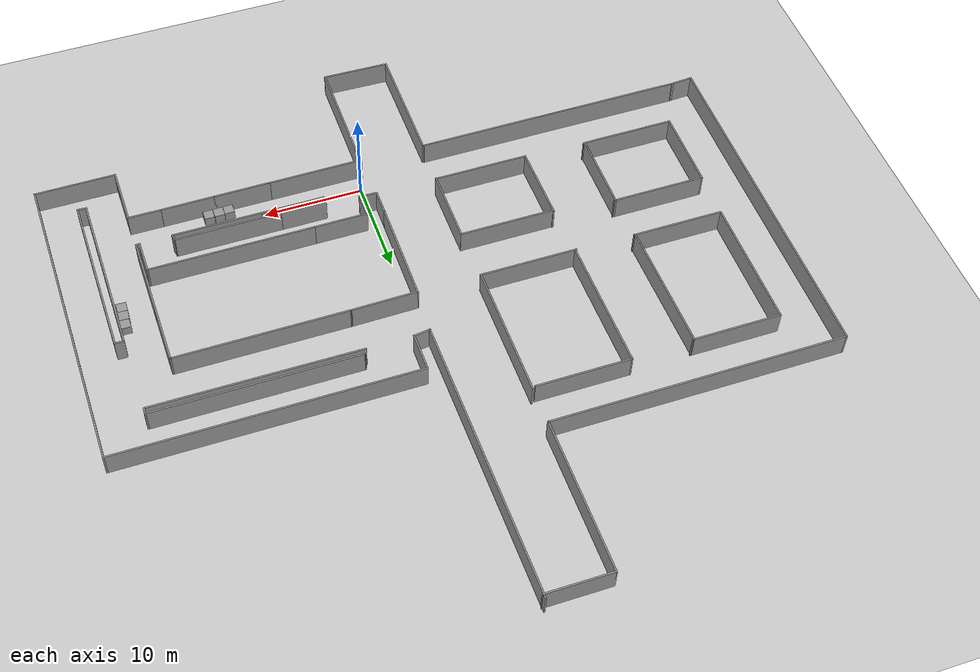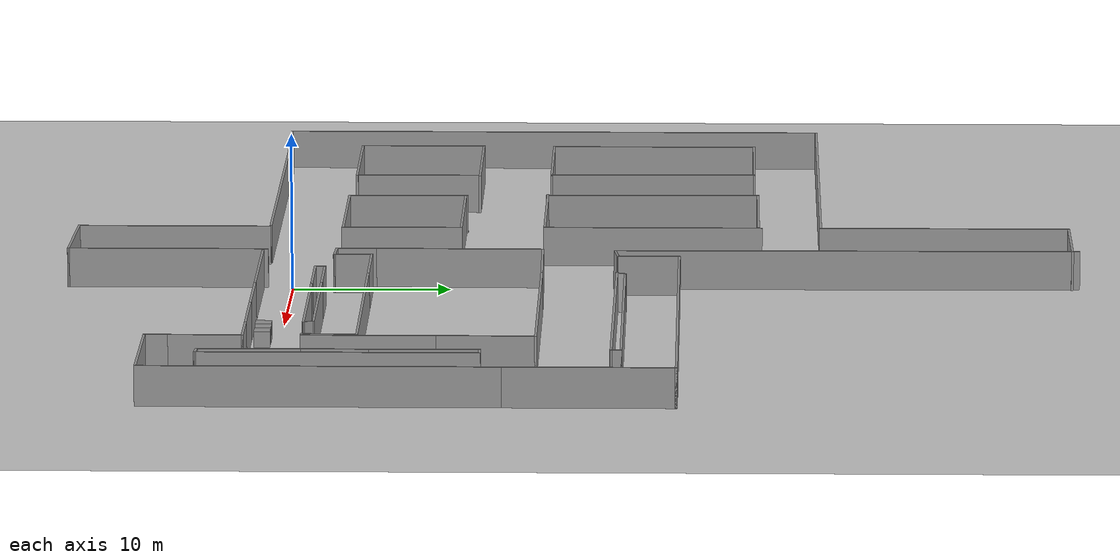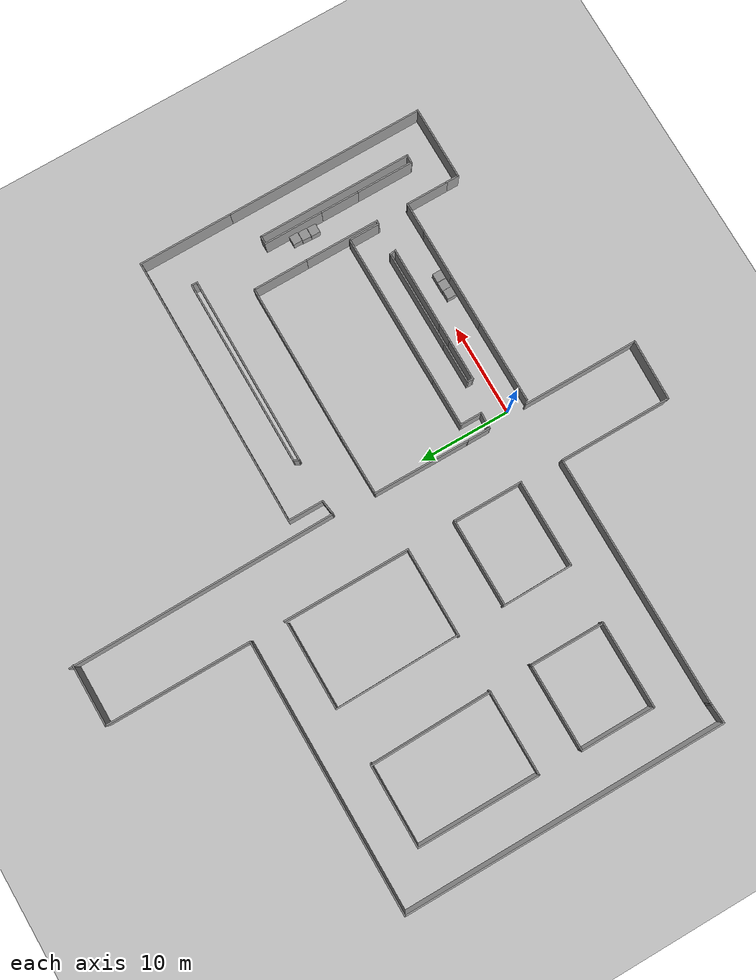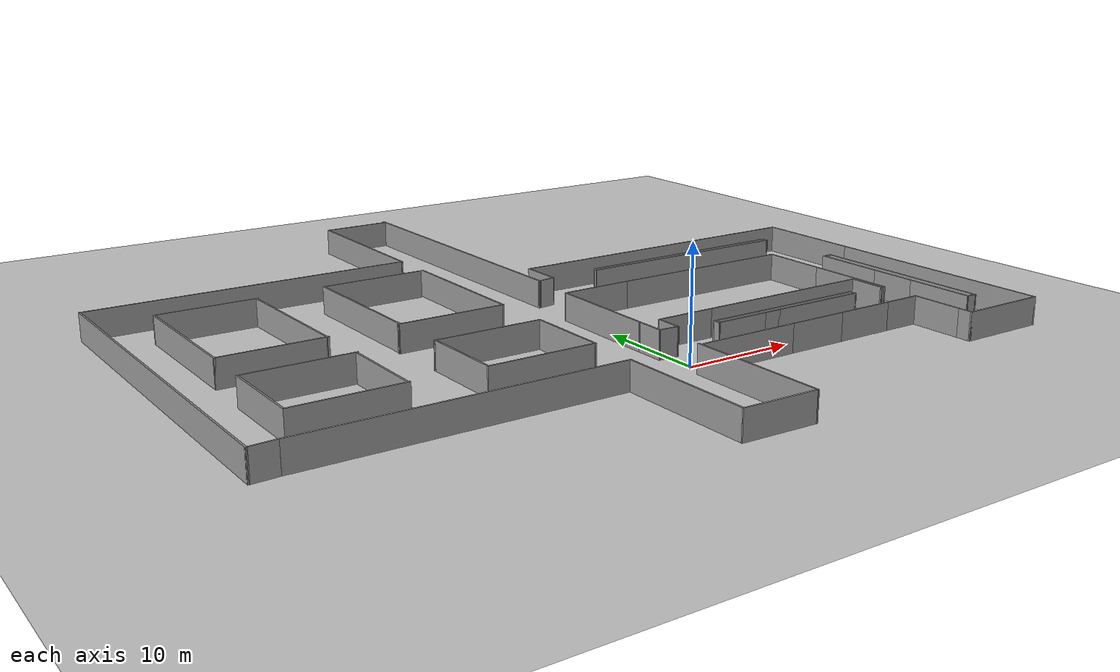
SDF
<sdf version="1.7">
 <world name="default">
  <plugin name="ActorPosesPlugin" filename="libActorPosesPlugin.so"/>
  <plugin name="collision_map_creator" filename="libcollision_map_creator.so"/>
  <light name="sun" type="directional">
   <pose>0 0 10 0 -0 0</pose>
   <diffuse>0.8 0.8 0.8 1</diffuse>
   <specular>0.2 0.2 0.2 1</specular>
   <attenuation>
    <range>1000</range>
    <constant>0.9</constant>
    <linear>0.01</linear>
    <quadratic>0.001</quadratic>
   </attenuation>
   <direction>-0.5 0.1 -0.9</direction>
   <spot><inner_angle>0</inner_angle><outer_angle>0</outer_angle><falloff>0</falloff></spot>
  </light>
  <model name="ground_plane">
   <static>1</static>
   <link name="link">
    <collision name="collision">
     <geometry><plane><normal>0 0 1</normal><size>100 100</size></plane></geometry>
     <surface><friction><ode><mu>100</mu><mu2>50</mu2></ode></friction></surface>
    </collision>
    <visual name="visual">
     <cast_shadows>0</cast_shadows>
     <geometry><plane><normal>0 0 1</normal><size>100 100</size></plane></geometry>
     <material>
      <script><uri>file://media/materials/scripts/gazebo.material</uri><name>Gazebo/Grey</name></script>
     </material>
    </visual>
   </link>
  </model>
  <gravity>0 0 -9.8</gravity>
  <magnetic_field>6e-06 2.3e-05 -4.2e-05</magnetic_field>
  <atmosphere type="adiabatic"/>
  <physics type="ode">
   <max_step_size>0.001</max_step_size>
   <real_time_factor>1</real_time_factor>
   <real_time_update_rate>1000</real_time_update_rate>
  </physics>
  <scene><ambient>0.4 0.4 0.4 1</ambient><background>0.7 0.7 0.7 1</background><shadows>1</shadows></scene>
  <spherical_coordinates>
   <surface_model>EARTH_WGS84</surface_model>
   <latitude_deg>0</latitude_deg>
   <longitude_deg>0</longitude_deg>
   <elevation>0</elevation>
   <heading_deg>0</heading_deg>
  </spherical_coordinates>
  <model name="complex_campus_scenario">
   <pose>-2.73791 17.7406 0 0 -0 0</pose>
   <link name="Wall_10">
    <collision name="Wall_10_Collision">
     <geometry><box><size>2 0.15 2.5</size></box></geometry>
     <pose>0 0 1.25 0 -0 0</pose>
    </collision>
    <visual name="Wall_10_Visual">
     <pose>0 0 1.25 0 -0 0</pose>
     <geometry><box><size>2 0.15 2.5</size></box></geometry>
     <material>
      <script><uri>file://media/materials/scripts/gazebo.material</uri><name>Gazebo/Grey</name></script>
      <ambient>1 1 1 1</ambient>
     </material>
     <meta><layer>0</layer></meta>
    </visual>
    <pose>12.5634 -16.0902 0 0 -0 0</pose>
   </link>
   <link name="Wall_100">
    <collision name="Wall_100_Collision">
     <geometry><box><size>0.25 0.15 2.5</size></box></geometry>
     <pose>0 0 1.25 0 -0 0</pose>
    </collision>
    <visual name="Wall_100_Visual">
     <pose>0 0 1.25 0 -0 0</pose>
     <geometry><box><size>0.25 0.15 2.5</size></box></geometry>
     <material>
      <script><uri>file://media/materials/scripts/gazebo.material</uri><name>Gazebo/Grey</name></script>
      <ambient>1 1 1 1</ambient>
     </material>
     <meta><layer>0</layer></meta>
    </visual>
    <pose>-14.1191 -1.89517 0 0 -0 1.0472</pose>
   </link>
   <link name="Wall_102">
    <collision name="Wall_102_Collision">
     <geometry><box><size>12.25 0.15 2.5</size></box></geometry>
     <pose>0 0 1.25 0 -0 0</pose>
    </collision>
    <visual name="Wall_102_Visual">
     <pose>0 0 1.25 0 -0 0</pose>
     <geometry><box><size>12.25 0.15 2.5</size></box></geometry>
     <material>
      <script><uri>file://media/materials/scripts/gazebo.material</uri><name>Gazebo/Grey</name></script>
      <ambient>1 1 1 1</ambient>
     </material>
     <meta><layer>0</layer></meta>
    </visual>
    <pose>-4.42292 -25.6115 0 0 -0 -1.5708</pose>
   </link>
   <link name="Wall_103">
    <collision name="Wall_103_Collision">
     <geometry><box><size>6.75259 0.15 2.5</size></box></geometry>
     <pose>0 0 1.25 0 -0 0</pose>
    </collision>
    <visual name="Wall_103_Visual">
     <pose>0 0 1.25 0 -0 0</pose>
     <geometry><box><size>6.75259 0.15 2.5</size></box></geometry>
     <material>
      <script><uri>file://media/materials/scripts/gazebo.material</uri><name>Gazebo/Grey</name></script>
      <ambient>1 1 1 1</ambient>
     </material>
     <meta><layer>0</layer></meta>
    </visual>
    <pose>-1.12292 -31.8798 0 0 -0 -0.028008</pose>
   </link>
   <link name="Wall_104">
    <collision name="Wall_104_Collision">
     <geometry><box><size>12.75 0.15 2.5</size></box></geometry>
     <pose>0 0 1.25 0 -0 0</pose>
    </collision>
    <visual name="Wall_104_Visual">
     <pose>0 0 1.25 0 -0 0</pose>
     <geometry><box><size>12.75 0.15 2.5</size></box></geometry>
     <material>
      <script><uri>file://media/materials/scripts/gazebo.material</uri><name>Gazebo/Grey</name></script>
      <ambient>1 1 1 1</ambient>
     </material>
     <meta><layer>0</layer></meta>
    </visual>
    <pose>2.17708 -25.6723 0 0 -0 1.5708</pose>
   </link>
   <link name="Wall_106">
    <collision name="Wall_106_Collision">
     <geometry><box><size>10.6698 0.15 2.5</size></box></geometry>
     <pose>0 0 1.25 0 -0 0</pose>
    </collision>
    <visual name="Wall_106_Visual">
     <pose>0 0 1.25 0 -0 0</pose>
     <geometry><box><size>10.6698 0.15 2.5</size></box></geometry>
     <material>
      <script><uri>file://media/materials/scripts/gazebo.material</uri><name>Gazebo/Grey</name></script>
      <ambient>1 1 1 1</ambient>
     </material>
     <meta><layer>0</layer></meta>
    </visual>
    <pose>1.95982 -7.18572 0 0 -0 1.56333</pose>
   </link>
   <link name="Wall_109">
    <collision name="Wall_109_Collision">
     <geometry><box><size>5.5 0.15 2.5</size></box></geometry>
     <pose>0 0 1.25 0 -0 0</pose>
    </collision>
    <visual name="Wall_109_Visual">
     <pose>0 0 1.25 0 -0 0</pose>
     <geometry><box><size>5.5 0.15 2.5</size></box></geometry>
     <material>
      <script><uri>file://media/materials/scripts/gazebo.material</uri><name>Gazebo/Grey</name></script>
      <ambient>1 1 1 1</ambient>
     </material>
     <meta><layer>0</layer></meta>
    </visual>
    <pose>6.3241 -12.6937 0 0 -0 3.14159</pose>
   </link>
   <link name="Wall_110">
    <collision name="Wall_110_Collision">
     <geometry><box><size>2.5 0.15 2.5</size></box></geometry>
     <pose>0 0 1.25 0 -0 0</pose>
    </collision>
    <visual name="Wall_110_Visual">
     <pose>0 0 1.25 0 -0 0</pose>
     <geometry><box><size>2.5 0.15 2.5</size></box></geometry>
     <material>
      <script><uri>file://media/materials/scripts/gazebo.material</uri><name>Gazebo/Grey</name></script>
      <ambient>1 1 1 1</ambient>
     </material>
     <meta><layer>0</layer></meta>
    </visual>
    <pose>3.6491 -13.8687 0 0 -0 -1.5708</pose>
   </link>
   <link name="Wall_112">
    <collision name="Wall_112_Collision">
     <geometry><box><size>4.75 0.15 2.5</size></box></geometry>
     <pose>0 0 1.25 0 -0 0</pose>
    </collision>
    <visual name="Wall_112_Visual">
     <pose>0 0 1.25 0 -0 0</pose>
     <geometry><box><size>4.75 0.15 2.5</size></box></geometry>
     <material>
      <script><uri>file://media/materials/scripts/gazebo.material</uri><name>Gazebo/Grey</name></script>
      <ambient>1 1 1 1</ambient>
     </material>
     <meta><layer>0</layer></meta>
    </visual>
    <pose>9.33838 -15.4902 0 0 -0 3.14159</pose>
   </link>
   <link name="Wall_115">
    <collision name="Wall_115_Collision">
     <geometry><box><size>0.75 0.15 2.5</size></box></geometry>
     <pose>0 0 1.25 0 -0 0</pose>
    </collision>
    <visual name="Wall_115_Visual">
     <pose>0 0 1.25 0 -0 0</pose>
     <geometry><box><size>0.75 0.15 2.5</size></box></geometry>
     <material>
      <script><uri>file://media/materials/scripts/gazebo.material</uri><name>Gazebo/Grey</name></script>
      <ambient>1 1 1 1</ambient>
     </material>
     <meta><layer>0</layer></meta>
    </visual>
    <pose>7.03838 -15.7902 0 0 -0 -1.5708</pose>
   </link>
   <link name="Wall_116">
    <collision name="Wall_116_Collision">
     <geometry><box><size>5 0.15 2.5</size></box></geometry>
     <pose>0 0 1.25 0 -0 0</pose>
    </collision>
    <visual name="Wall_116_Visual">
     <pose>0 0 1.25 0 -0 0</pose>
     <geometry><box><size>5 0.15 2.5</size></box></geometry>
     <material>
      <script><uri>file://media/materials/scripts/gazebo.material</uri><name>Gazebo/Grey</name></script>
      <ambient>1 1 1 1</ambient>
     </material>
     <meta><layer>0</layer></meta>
    </visual>
    <pose>9.46338 -16.0902 0 0 -0 0</pose>
   </link>
   <link name="Wall_118">
    <collision name="Wall_118_Collision">
     <geometry><box><size>2.6677 0.15 2.5</size></box></geometry>
     <pose>0 0 1.25 0 -0 0</pose>
    </collision>
    <visual name="Wall_118_Visual">
     <pose>0 0 1.25 0 -0 0</pose>
     <geometry><box><size>2.6677 0.15 2.5</size></box></geometry>
     <material>
      <script><uri>file://media/materials/scripts/gazebo.material</uri><name>Gazebo/Grey</name></script>
      <ambient>1 1 1 1</ambient>
     </material>
     <meta><layer>0</layer></meta>
    </visual>
    <pose>1.92054 -13.7043 0 0 -0 -1.5708</pose>
   </link>
   <link name="Wall_119">
    <collision name="Wall_119_Collision">
     <geometry><box><size>1.88043 0.15 2.5</size></box></geometry>
     <pose>0 0 1.25 0 -0 0</pose>
    </collision>
    <visual name="Wall_119_Visual">
     <pose>0 0 1.25 0 -0 0</pose>
     <geometry><box><size>1.88043 0.15 2.5</size></box></geometry>
     <material>
      <script><uri>file://media/materials/scripts/gazebo.material</uri><name>Gazebo/Grey</name></script>
      <ambient>1 1 1 1</ambient>
     </material>
     <meta><layer>0</layer></meta>
    </visual>
    <pose>2.78482 -15.0034 0 0 -0 -0.046525</pose>
   </link>
   <link name="Wall_12">
    <collision name="Wall_12_Collision">
     <geometry><box><size>9 0.15 2.5</size></box></geometry>
     <pose>0 0 1.25 0 -0 0</pose>
    </collision>
    <visual name="Wall_12_Visual">
     <pose>0 0 1.25 0 -0 0</pose>
     <geometry><box><size>9 0.15 2.5</size></box></geometry>
     <material>
      <script><uri>file://media/materials/scripts/gazebo.material</uri><name>Gazebo/Grey</name></script>
      <ambient>1 1 1 1</ambient>
     </material>
     <meta><layer>0</layer></meta>
    </visual>
    <pose>17.9134 -16.0902 0 0 -0 0</pose>
   </link>
   <link name="Wall_121">
    <collision name="Wall_121_Collision">
     <geometry><box><size>7.75 0.15 2.5</size></box></geometry>
     <pose>0 0 1.25 0 -0 0</pose>
    </collision>
    <visual name="Wall_121_Visual">
     <pose>0 0 1.25 0 -0 0</pose>
     <geometry><box><size>7.75 0.15 2.5</size></box></geometry>
     <material>
      <script><uri>file://media/materials/scripts/gazebo.material</uri><name>Gazebo/Grey</name></script>
      <ambient>1 1 1 1</ambient>
     </material>
     <meta><layer>0</layer></meta>
    </visual>
    <pose>-4.25185 -11.0949 0 0 -0 1.5708</pose>
   </link>
   <link name="Wall_123">
    <collision name="Wall_123_Collision">
     <geometry><box><size>14 0.15 2.5</size></box></geometry>
     <pose>0 0 1.25 0 -0 0</pose>
    </collision>
    <visual name="Wall_123_Visual">
     <pose>0 0 1.25 0 -0 0</pose>
     <geometry><box><size>14 0.15 2.5</size></box></geometry>
     <material>
      <script><uri>file://media/materials/scripts/gazebo.material</uri><name>Gazebo/Grey</name></script>
      <ambient>1 1 1 1</ambient>
     </material>
     <meta><layer>0</layer></meta>
    </visual>
    <pose>-4.37772 4.98997 0 0 -0 -1.5708</pose>
   </link>
   <link name="Wall_125">
    <collision name="Wall_125_Collision">
     <geometry><box><size>16 0.15 2.5</size></box></geometry>
     <pose>0 0 1.25 0 -0 0</pose>
    </collision>
    <visual name="Wall_125_Visual">
     <pose>0 0 1.25 0 -0 0</pose>
     <geometry><box><size>16 0.15 2.5</size></box></geometry>
     <material>
      <script><uri>file://media/materials/scripts/gazebo.material</uri><name>Gazebo/Grey</name></script>
      <ambient>1 1 1 1</ambient>
     </material>
     <meta><layer>0</layer></meta>
    </visual>
    <pose>-4.42292 23.6527 0 0 -0 1.5708</pose>
   </link>
   <link name="Wall_126">
    <collision name="Wall_126_Collision">
     <geometry><box><size>6.75 0.15 2.5</size></box></geometry>
     <pose>0 0 1.25 0 -0 0</pose>
    </collision>
    <visual name="Wall_126_Visual">
     <pose>0 0 1.25 0 -0 0</pose>
     <geometry><box><size>6.75 0.15 2.5</size></box></geometry>
     <material>
      <script><uri>file://media/materials/scripts/gazebo.material</uri><name>Gazebo/Grey</name></script>
      <ambient>1 1 1 1</ambient>
     </material>
     <meta><layer>0</layer></meta>
    </visual>
    <pose>-1.12292 31.5777 0 0 -0 0</pose>
   </link>
   <link name="Wall_128">
    <collision name="Wall_128_Collision">
     <geometry><box><size>29.4707 0.15 2.5</size></box></geometry>
     <pose>0 0 1.25 0 -0 0</pose>
    </collision>
    <visual name="Wall_128_Visual">
     <pose>0 0 1.25 0 -0 0</pose>
     <geometry><box><size>29.4707 0.15 2.5</size></box></geometry>
     <material>
      <script><uri>file://media/materials/scripts/gazebo.material</uri><name>Gazebo/Grey</name></script>
      <ambient>1 1 1 1</ambient>
     </material>
     <meta><layer>0</layer></meta>
    </visual>
    <pose>2.21266 17.3139 0 0 -0 -1.56299</pose>
   </link>
   <link name="Wall_14">
    <collision name="Wall_14_Collision">
     <geometry><box><size>3.5 0.15 2.5</size></box></geometry>
     <pose>0 0 1.25 0 -0 0</pose>
    </collision>
    <visual name="Wall_14_Visual">
     <pose>0 0 1.25 0 -0 0</pose>
     <geometry><box><size>3.5 0.15 2.5</size></box></geometry>
     <material>
      <script><uri>file://media/materials/scripts/gazebo.material</uri><name>Gazebo/Grey</name></script>
      <ambient>1 1 1 1</ambient>
     </material>
     <meta><layer>0</layer></meta>
    </visual>
    <pose>24.2521 -19.6223 0 0 -0 0</pose>
   </link>
   <link name="Wall_16">
    <collision name="Wall_16_Collision">
     <geometry><box><size>4.75 0.15 2.5</size></box></geometry>
     <pose>0 0 1.25 0 -0 0</pose>
    </collision>
    <visual name="Wall_16_Visual">
     <pose>0 0 1.25 0 -0 0</pose>
     <geometry><box><size>4.75 0.15 2.5</size></box></geometry>
     <material>
      <script><uri>file://media/materials/scripts/gazebo.material</uri><name>Gazebo/Grey</name></script>
      <ambient>1 1 1 1</ambient>
     </material>
     <meta><layer>0</layer></meta>
    </visual>
    <pose>25.9271 -21.9223 0 0 -0 -1.5708</pose>
   </link>
   <link name="Wall_17">
    <collision name="Wall_17_Collision">
     <geometry><box><size>1.5 0.15 2.5</size></box></geometry>
     <pose>0 0 1.25 0 -0 0</pose>
    </collision>
    <visual name="Wall_17_Visual">
     <pose>0 0 1.25 0 -0 0</pose>
     <geometry><box><size>1.5 0.15 2.5</size></box></geometry>
     <material>
      <script><uri>file://media/materials/scripts/gazebo.material</uri><name>Gazebo/Grey</name></script>
      <ambient>1 1 1 1</ambient>
     </material>
     <meta><layer>0</layer></meta>
    </visual>
    <pose>25.9271 -24.8973 0 0 -0 -1.5708</pose>
   </link>
   <link name="Wall_19">
    <collision name="Wall_19_Collision">
     <geometry><box><size>8.25 0.15 2.5</size></box></geometry>
     <pose>0 0 1.25 0 -0 0</pose>
    </collision>
    <visual name="Wall_19_Visual">
     <pose>0 0 1.25 0 -0 0</pose>
     <geometry><box><size>8.25 0.15 2.5</size></box></geometry>
     <material>
      <script><uri>file://media/materials/scripts/gazebo.material</uri><name>Gazebo/Grey</name></script>
      <ambient>1 1 1 1</ambient>
     </material>
     <meta><layer>0</layer></meta>
    </visual>
    <pose>25.9491 -11.9937 0 0 -0 1.5708</pose>
   </link>
   <link name="Wall_21">
    <collision name="Wall_21_Collision">
     <geometry><box><size>4.25 0.15 2.5</size></box></geometry>
     <pose>0 0 1.25 0 -0 0</pose>
    </collision>
    <visual name="Wall_21_Visual">
     <pose>0 0 1.25 0 -0 0</pose>
     <geometry><box><size>4.25 0.15 2.5</size></box></geometry>
     <material>
      <script><uri>file://media/materials/scripts/gazebo.material</uri><name>Gazebo/Grey</name></script>
      <ambient>1 1 1 1</ambient>
     </material>
     <meta><layer>0</layer></meta>
    </visual>
    <pose>29.5577 -13.7814 0 0 -0 1.5708</pose>
   </link>
   <link name="Wall_23">
    <collision name="Wall_23_Collision">
     <geometry><box><size>6.25 0.15 2.5</size></box></geometry>
     <pose>0 0 1.25 0 -0 0</pose>
    </collision>
    <visual name="Wall_23_Visual">
     <pose>0 0 1.25 0 -0 0</pose>
     <geometry><box><size>6.25 0.15 2.5</size></box></geometry>
     <material>
      <script><uri>file://media/materials/scripts/gazebo.material</uri><name>Gazebo/Grey</name></script>
      <ambient>1 1 1 1</ambient>
     </material>
     <meta><layer>0</layer></meta>
    </visual>
    <pose>25.9491 -4.89366 0 0 -0 1.5708</pose>
   </link>
   <link name="Wall_25">
    <collision name="Wall_25_Collision">
     <geometry><box><size>6.75 0.15 2.5</size></box></geometry>
     <pose>0 0 1.25 0 -0 0</pose>
    </collision>
    <visual name="Wall_25_Visual">
     <pose>0 0 1.25 0 -0 0</pose>
     <geometry><box><size>6.75 0.15 2.5</size></box></geometry>
     <material>
      <script><uri>file://media/materials/scripts/gazebo.material</uri><name>Gazebo/Grey</name></script>
      <ambient>1 1 1 1</ambient>
     </material>
     <meta><layer>0</layer></meta>
    </visual>
    <pose>29.5577 -8.43139 0 0 -0 1.5708</pose>
   </link>
   <link name="Wall_27">
    <collision name="Wall_27_Collision">
     <geometry><box><size>1 0.15 2.5</size></box></geometry>
     <pose>0 0 1.25 0 -0 0</pose>
    </collision>
    <visual name="Wall_27_Visual">
     <pose>0 0 1.25 0 -0 0</pose>
     <geometry><box><size>1 0.15 2.5</size></box></geometry>
     <material>
      <script><uri>file://media/materials/scripts/gazebo.material</uri><name>Gazebo/Grey</name></script>
      <ambient>1 1 1 1</ambient>
     </material>
     <meta><layer>0</layer></meta>
    </visual>
    <pose>29.9827 -5.13139 0 0 -0 0</pose>
   </link>
   <link name="Wall_28">
    <collision name="Wall_28_Collision">
     <geometry><box><size>17.25 0.15 2.5</size></box></geometry>
     <pose>0 0 1.25 0 -0 0</pose>
    </collision>
    <visual name="Wall_28_Visual">
     <pose>0 0 1.25 0 -0 0</pose>
     <geometry><box><size>17.25 0.15 2.5</size></box></geometry>
     <material>
      <script><uri>file://media/materials/scripts/gazebo.material</uri><name>Gazebo/Grey</name></script>
      <ambient>1 1 1 1</ambient>
     </material>
     <meta><layer>0</layer></meta>
    </visual>
    <pose>30.4077 -13.6814 0 0 -0 -1.5708</pose>
   </link>
   <link name="Wall_30">
    <collision name="Wall_30_Collision">
     <geometry><box><size>6.5 0.15 2.5</size></box></geometry>
     <pose>0 0 1.25 0 -0 0</pose>
    </collision>
    <visual name="Wall_30_Visual">
     <pose>0 0 1.25 0 -0 0</pose>
     <geometry><box><size>6.5 0.15 2.5</size></box></geometry>
     <material>
      <script><uri>file://media/materials/scripts/gazebo.material</uri><name>Gazebo/Grey</name></script>
      <ambient>1 1 1 1</ambient>
     </material>
     <meta><layer>0</layer></meta>
    </visual>
    <pose>29.5577 -19.0064 0 0 -0 -1.5708</pose>
   </link>
   <link name="Wall_31">
    <collision name="Wall_31_Collision">
     <geometry><box><size>1.00147 0.15 2.5</size></box></geometry>
     <pose>0 0 1.25 0 -0 0</pose>
    </collision>
    <visual name="Wall_31_Visual">
     <pose>0 0 1.25 0 -0 0</pose>
     <geometry><box><size>1.00147 0.15 2.5</size></box></geometry>
     <material>
      <script><uri>file://media/materials/scripts/gazebo.material</uri><name>Gazebo/Grey</name></script>
      <ambient>1 1 1 1</ambient>
     </material>
     <meta><layer>0</layer></meta>
    </visual>
    <pose>29.9827 -22.2064 0 0 -0 -0.058756</pose>
   </link>
   <link name="Wall_33">
    <collision name="Wall_33_Collision">
     <geometry><box><size>8.25 0.15 2.5</size></box></geometry>
     <pose>0 0 1.25 0 -0 0</pose>
    </collision>
    <visual name="Wall_33_Visual">
     <pose>0 0 1.25 0 -0 0</pose>
     <geometry><box><size>8.25 0.15 2.5</size></box></geometry>
     <material>
      <script><uri>file://media/materials/scripts/gazebo.material</uri><name>Gazebo/Grey</name></script>
      <ambient>1 1 1 1</ambient>
     </material>
     <meta><layer>0</layer></meta>
    </visual>
    <pose>29.9771 -25.5723 0 0 -0 0</pose>
   </link>
   <link name="Wall_34">
    <collision name="Wall_34_Collision">
     <geometry><box><size>22.0964 0.15 2.5</size></box></geometry>
     <pose>0 0 1.25 0 -0 0</pose>
    </collision>
    <visual name="Wall_34_Visual">
     <pose>0 0 1.25 0 -0 0</pose>
     <geometry><box><size>22.0964 0.15 2.5</size></box></geometry>
     <material>
      <script><uri>file://media/materials/scripts/gazebo.material</uri><name>Gazebo/Grey</name></script>
      <ambient>1 1 1 1</ambient>
     </material>
     <meta><layer>0</layer></meta>
    </visual>
    <pose>34.0271 -14.5991 0 0 -0 1.5708</pose>
   </link>
   <link name="Wall_38">
    <collision name="Wall_38_Collision">
     <geometry><box><size>10.75 0.15 2.5</size></box></geometry>
     <pose>0 0 1.25 0 -0 0</pose>
    </collision>
    <visual name="Wall_38_Visual">
     <pose>0 0 1.25 0 -0 0</pose>
     <geometry><box><size>10.75 0.15 2.5</size></box></geometry>
     <material>
      <script><uri>file://media/materials/scripts/gazebo.material</uri><name>Gazebo/Grey</name></script>
      <ambient>1 1 1 1</ambient>
     </material>
     <meta><layer>0</layer></meta>
    </visual>
    <pose>16.9384 -15.4902 0 0 -0 0</pose>
   </link>
   <link name="Wall_39">
    <collision name="Wall_39_Collision">
     <geometry><box><size>0.758276 0.15 2.5</size></box></geometry>
     <pose>0 0 1.25 0 -0 0</pose>
    </collision>
    <visual name="Wall_39_Visual">
     <pose>0 0 1.25 0 -0 0</pose>
     <geometry><box><size>0.758276 0.15 2.5</size></box></geometry>
     <material>
      <script><uri>file://media/materials/scripts/gazebo.material</uri><name>Gazebo/Grey</name></script>
      <ambient>1 1 1 1</ambient>
     </material>
     <meta><layer>0</layer></meta>
    </visual>
    <pose>22.2884 -15.7902 0 0 -0 -1.40565</pose>
   </link>
   <link name="Wall_4">
    <collision name="Wall_4_Collision">
     <geometry><box><size>5.75 0.15 2.5</size></box></geometry>
     <pose>0 0 1.25 0 -0 0</pose>
    </collision>
    <visual name="Wall_4_Visual">
     <pose>0 0 1.25 0 -0 0</pose>
     <geometry><box><size>5.75 0.15 2.5</size></box></geometry>
     <material>
      <script><uri>file://media/materials/scripts/gazebo.material</uri><name>Gazebo/Grey</name></script>
      <ambient>1 1 1 1</ambient>
     </material>
     <meta><layer>0</layer></meta>
    </visual>
    <pose>14.4271 -19.6223 0 0 -0 0</pose>
   </link>
   <link name="Wall_41">
    <collision name="Wall_41_Collision">
     <geometry><box><size>0.5 0.15 2.5</size></box></geometry>
     <pose>0 0 1.25 0 -0 0</pose>
    </collision>
    <visual name="Wall_41_Visual">
     <pose>0 0 1.25 0 -0 0</pose>
     <geometry><box><size>0.5 0.15 2.5</size></box></geometry>
     <material>
      <script><uri>file://media/materials/scripts/gazebo.material</uri><name>Gazebo/Grey</name></script>
      <ambient>1 1 1 1</ambient>
     </material>
     <meta><layer>0</layer></meta>
    </visual>
    <pose>25.7741 -16.0437 0 0 -0 3.14159</pose>
   </link>
   <link name="Wall_42">
    <collision name="Wall_42_Collision">
     <geometry><box><size>3.5 0.15 2.5</size></box></geometry>
     <pose>0 0 1.25 0 -0 0</pose>
    </collision>
    <visual name="Wall_42_Visual">
     <pose>0 0 1.25 0 -0 0</pose>
     <geometry><box><size>3.5 0.15 2.5</size></box></geometry>
     <material>
      <script><uri>file://media/materials/scripts/gazebo.material</uri><name>Gazebo/Grey</name></script>
      <ambient>1 1 1 1</ambient>
     </material>
     <meta><layer>0</layer></meta>
    </visual>
    <pose>25.5991 -14.3687 0 0 -0 1.5708</pose>
   </link>
   <link name="Wall_43">
    <collision name="Wall_43_Collision">
     <geometry><box><size>16.75 0.15 2.5</size></box></geometry>
     <pose>0 0 1.25 0 -0 0</pose>
    </collision>
    <visual name="Wall_43_Visual">
     <pose>0 0 1.25 0 -0 0</pose>
     <geometry><box><size>16.75 0.15 2.5</size></box></geometry>
     <material>
      <script><uri>file://media/materials/scripts/gazebo.material</uri><name>Gazebo/Grey</name></script>
      <ambient>1 1 1 1</ambient>
     </material>
     <meta><layer>0</layer></meta>
    </visual>
    <pose>17.2991 -12.6937 0 0 -0 3.14159</pose>
   </link>
   <link name="Wall_46">
    <collision name="Wall_46_Collision">
     <geometry><box><size>17.5 0.15 2.5</size></box></geometry>
     <pose>0 0 1.25 0 -0 0</pose>
    </collision>
    <visual name="Wall_46_Visual">
     <pose>0 0 1.25 0 -0 0</pose>
     <geometry><box><size>17.5 0.15 2.5</size></box></geometry>
     <material>
      <script><uri>file://media/materials/scripts/gazebo.material</uri><name>Gazebo/Grey</name></script>
      <ambient>1 1 1 1</ambient>
     </material>
     <meta><layer>0</layer></meta>
    </visual>
    <pose>17.2741 -1.84366 0 0 -0 3.14159</pose>
   </link>
   <link name="Wall_48">
    <collision name="Wall_48_Collision">
     <geometry><box><size>21.0007 0.15 2.5</size></box></geometry>
     <pose>0 0 1.25 0 -0 0</pose>
    </collision>
    <visual name="Wall_48_Visual">
     <pose>0 0 1.25 0 -0 0</pose>
     <geometry><box><size>21.0007 0.15 2.5</size></box></geometry>
     <material>
      <script><uri>file://media/materials/scripts/gazebo.material</uri><name>Gazebo/Grey</name></script>
      <ambient>1 1 1 1</ambient>
     </material>
     <meta><layer>0</layer></meta>
    </visual>
    <pose>19.059 2.80759 0 0 -0 -0.00397</pose>
   </link>
   <link name="Wall_5">
    <collision name="Wall_5_Collision">
     <geometry><box><size>5.5 0.15 2.5</size></box></geometry>
     <pose>0 0 1.25 0 -0 0</pose>
    </collision>
    <visual name="Wall_5_Visual">
     <pose>0 0 1.25 0 -0 0</pose>
     <geometry><box><size>5.5 0.15 2.5</size></box></geometry>
     <material>
      <script><uri>file://media/materials/scripts/gazebo.material</uri><name>Gazebo/Grey</name></script>
      <ambient>1 1 1 1</ambient>
     </material>
     <meta><layer>0</layer></meta>
    </visual>
    <pose>19.9021 -19.6223 0 0 -0 0</pose>
   </link>
   <link name="Wall_50">
    <collision name="Wall_50_Collision">
     <geometry><box><size>10.5 0.15 2.5</size></box></geometry>
     <pose>0 0 1.25 0 -0 0</pose>
    </collision>
    <visual name="Wall_50_Visual">
     <pose>0 0 1.25 0 -0 0</pose>
     <geometry><box><size>10.5 0.15 2.5</size></box></geometry>
     <material>
      <script><uri>file://media/materials/scripts/gazebo.material</uri><name>Gazebo/Grey</name></script>
      <ambient>1 1 1 1</ambient>
     </material>
     <meta><layer>0</layer></meta>
    </visual>
    <pose>34.0271 1.54912 0 0 -0 1.5708</pose>
   </link>
   <link name="Wall_54">
    <collision name="Wall_54_Collision">
     <geometry><box><size>0.75 0.15 2.5</size></box></geometry>
     <pose>0 0 1.25 0 -0 0</pose>
    </collision>
    <visual name="Wall_54_Visual">
     <pose>0 0 1.25 0 -0 0</pose>
     <geometry><box><size>0.75 0.15 2.5</size></box></geometry>
     <material>
      <script><uri>file://media/materials/scripts/gazebo.material</uri><name>Gazebo/Grey</name></script>
      <ambient>1 1 1 1</ambient>
     </material>
     <meta><layer>0</layer></meta>
    </visual>
    <pose>29.484 3.06621 0 0 -0 1.5708</pose>
   </link>
   <link name="Wall_55">
    <collision name="Wall_55_Collision">
     <geometry><box><size>20.75 0.15 2.5</size></box></geometry>
     <pose>0 0 1.25 0 -0 0</pose>
    </collision>
    <visual name="Wall_55_Visual">
     <pose>0 0 1.25 0 -0 0</pose>
     <geometry><box><size>20.75 0.15 2.5</size></box></geometry>
     <material>
      <script><uri>file://media/materials/scripts/gazebo.material</uri><name>Gazebo/Grey</name></script>
      <ambient>1 1 1 1</ambient>
     </material>
     <meta><layer>0</layer></meta>
    </visual>
    <pose>19.184 3.36621 0 0 -0 3.14159</pose>
   </link>
   <link name="Wall_56">
    <collision name="Wall_56_Collision">
     <geometry><box><size>0.724484 0.15 2.5</size></box></geometry>
     <pose>0 0 1.25 0 -0 0</pose>
    </collision>
    <visual name="Wall_56_Visual">
     <pose>0 0 1.25 0 -0 0</pose>
     <geometry><box><size>0.724484 0.15 2.5</size></box></geometry>
     <material>
      <script><uri>file://media/materials/scripts/gazebo.material</uri><name>Gazebo/Grey</name></script>
      <ambient>1 1 1 1</ambient>
     </material>
     <meta><layer>0</layer></meta>
    </visual>
    <pose>8.75905 3.10759 0 0 -0 -2.02103</pose>
   </link>
   <link name="Wall_59">
    <collision name="Wall_59_Collision">
     <geometry><box><size>30.25 0.15 2.5</size></box></geometry>
     <pose>0 0 1.25 0 -0 0</pose>
    </collision>
    <visual name="Wall_59_Visual">
     <pose>0 0 1.25 0 -0 0</pose>
     <geometry><box><size>30.25 0.15 2.5</size></box></geometry>
     <material>
      <script><uri>file://media/materials/scripts/gazebo.material</uri><name>Gazebo/Grey</name></script>
      <ambient>1 1 1 1</ambient>
     </material>
     <meta><layer>0</layer></meta>
    </visual>
    <pose>18.9771 6.72412 0 0 -0 3.14159</pose>
   </link>
   <link name="Wall_60">
    <collision name="Wall_60_Collision">
     <geometry><box><size>4 0.15 2.5</size></box></geometry>
     <pose>0 0 1.25 0 -0 0</pose>
    </collision>
    <visual name="Wall_60_Visual">
     <pose>0 0 1.25 0 -0 0</pose>
     <geometry><box><size>4 0.15 2.5</size></box></geometry>
     <material>
      <script><uri>file://media/materials/scripts/gazebo.material</uri><name>Gazebo/Grey</name></script>
      <ambient>1 1 1 1</ambient>
     </material>
     <meta><layer>0</layer></meta>
    </visual>
    <pose>3.92708 4.79912 0 0 -0 -1.5708</pose>
   </link>
   <link name="Wall_62">
    <collision name="Wall_62_Collision">
     <geometry><box><size>6.75115 0.15 2.5</size></box></geometry>
     <pose>0 0 1.25 0 -0 0</pose>
    </collision>
    <visual name="Wall_62_Visual">
     <pose>0 0 1.25 0 -0 0</pose>
     <geometry><box><size>6.75115 0.15 2.5</size></box></geometry>
     <material>
      <script><uri>file://media/materials/scripts/gazebo.material</uri><name>Gazebo/Grey</name></script>
      <ambient>1 1 1 1</ambient>
     </material>
     <meta><layer>0</layer></meta>
    </visual>
    <pose>5.2991 -1.88481 0 0 -0 -3.12912</pose>
   </link>
   <link name="Wall_64">
    <collision name="Wall_64_Collision">
     <geometry><box><size>1.76507 0.15 2.5</size></box></geometry>
     <pose>0 0 1.25 0 -0 0</pose>
    </collision>
    <visual name="Wall_64_Visual">
     <pose>0 0 1.25 0 -0 0</pose>
     <geometry><box><size>1.76507 0.15 2.5</size></box></geometry>
     <material>
      <script><uri>file://media/materials/scripts/gazebo.material</uri><name>Gazebo/Grey</name></script>
      <ambient>1 1 1 1</ambient>
     </material>
     <meta><layer>0</layer></meta>
    </visual>
    <pose>3.12708 2.76405 0 0 -0 -3.00485</pose>
   </link>
   <link name="Wall_67">
    <collision name="Wall_67_Collision">
     <geometry><box><size>9.25 0.15 2.5</size></box></geometry>
     <pose>0 0 1.25 0 -0 0</pose>
    </collision>
    <visual name="Wall_67_Visual">
     <pose>0 0 1.25 0 -0 0</pose>
     <geometry><box><size>9.25 0.15 2.5</size></box></geometry>
     <material>
      <script><uri>file://media/materials/scripts/gazebo.material</uri><name>Gazebo/Grey</name></script>
      <ambient>1 1 1 1</ambient>
     </material>
     <meta><layer>0</layer></meta>
    </visual>
    <pose>7.07708 -19.6223 0 0 -0 3.14159</pose>
   </link>
   <link name="Wall_70">
    <collision name="Wall_70_Collision">
     <geometry><box><size>27.5 0.15 2.5</size></box></geometry>
     <pose>0 0 1.25 0 -0 0</pose>
    </collision>
    <visual name="Wall_70_Visual">
     <pose>0 0 1.25 0 -0 0</pose>
     <geometry><box><size>27.5 0.15 2.5</size></box></geometry>
     <material>
      <script><uri>file://media/materials/scripts/gazebo.material</uri><name>Gazebo/Grey</name></script>
      <ambient>1 1 1 1</ambient>
     </material>
     <meta><layer>0</layer></meta>
    </visual>
    <pose>-18.2724 -19.4964 0 0 -0 3.14159</pose>
   </link>
   <link name="Wall_72">
    <collision name="Wall_72_Collision">
     <geometry><box><size>2.35498 0.15 2.5</size></box></geometry>
     <pose>0 0 1.25 0 -0 0</pose>
    </collision>
    <visual name="Wall_72_Visual">
     <pose>0 0 1.25 0 -0 0</pose>
     <geometry><box><size>2.35498 0.15 2.5</size></box></geometry>
     <material>
      <script><uri>file://media/materials/scripts/gazebo.material</uri><name>Gazebo/Grey</name></script>
      <ambient>1 1 1 1</ambient>
     </material>
     <meta><layer>0</layer></meta>
    </visual>
    <pose>-32.9222 -19.5594 0 0 -0 -3.08447</pose>
   </link>
   <link name="Wall_73">
    <collision name="Wall_73_Collision">
     <geometry><box><size>35.5 0.15 2.5</size></box></geometry>
     <pose>0 0 1.25 0 -0 0</pose>
    </collision>
    <visual name="Wall_73_Visual">
     <pose>0 0 1.25 0 -0 0</pose>
     <geometry><box><size>35.5 0.15 2.5</size></box></geometry>
     <material>
      <script><uri>file://media/materials/scripts/gazebo.material</uri><name>Gazebo/Grey</name></script>
      <ambient>1 1 1 1</ambient>
     </material>
     <meta><layer>0</layer></meta>
    </visual>
    <pose>-34.0229 -1.94729 0 0 -0 1.5708</pose>
   </link>
   <link name="Wall_74">
    <collision name="Wall_74_Collision">
     <geometry><box><size>29.75 0.15 2.5</size></box></geometry>
     <pose>0 0 1.25 0 -0 0</pose>
    </collision>
    <visual name="Wall_74_Visual">
     <pose>0 0 1.25 0 -0 0</pose>
     <geometry><box><size>29.75 0.15 2.5</size></box></geometry>
     <material>
      <script><uri>file://media/materials/scripts/gazebo.material</uri><name>Gazebo/Grey</name></script>
      <ambient>1 1 1 1</ambient>
     </material>
     <meta><layer>0</layer></meta>
    </visual>
    <pose>-19.2229 15.7277 0 0 -0 0</pose>
   </link>
   <link name="Wall_77">
    <collision name="Wall_77_Collision">
     <geometry><box><size>13.5 0.15 2.5</size></box></geometry>
     <pose>0 0 1.25 0 -0 0</pose>
    </collision>
    <visual name="Wall_77_Visual">
     <pose>0 0 1.25 0 -0 0</pose>
     <geometry><box><size>13.5 0.15 2.5</size></box></geometry>
     <material>
      <script><uri>file://media/materials/scripts/gazebo.material</uri><name>Gazebo/Grey</name></script>
      <ambient>1 1 1 1</ambient>
     </material>
     <meta><layer>0</layer></meta>
    </visual>
    <pose>-29.2895 4.85536 0 0 -0 -1.5708</pose>
   </link>
   <link name="Wall_79">
    <collision name="Wall_79_Collision">
     <geometry><box><size>8.25 0.15 2.5</size></box></geometry>
     <pose>0 0 1.25 0 -0 0</pose>
    </collision>
    <visual name="Wall_79_Visual">
     <pose>0 0 1.25 0 -0 0</pose>
     <geometry><box><size>8.25 0.15 2.5</size></box></geometry>
     <material>
      <script><uri>file://media/materials/scripts/gazebo.material</uri><name>Gazebo/Grey</name></script>
      <ambient>1 1 1 1</ambient>
     </material>
     <meta><layer>0</layer></meta>
    </visual>
    <pose>-29.399 -10.5799 0 0 -0 -1.5708</pose>
   </link>
   <link name="Wall_80">
    <collision name="Wall_80_Collision">
     <geometry><box><size>9.53431 0.15 2.5</size></box></geometry>
     <pose>0 0 1.25 0 -0 0</pose>
    </collision>
    <visual name="Wall_80_Visual">
     <pose>0 0 1.25 0 -0 0</pose>
     <geometry><box><size>9.53431 0.15 2.5</size></box></geometry>
     <material>
      <script><uri>file://media/materials/scripts/gazebo.material</uri><name>Gazebo/Grey</name></script>
      <ambient>1 1 1 1</ambient>
     </material>
     <meta><layer>0</layer></meta>
    </visual>
    <pose>-24.7068 -14.6299 0 0 -0 0</pose>
   </link>
   <link name="Wall_82">
    <collision name="Wall_82_Collision">
     <geometry><box><size>9.61805 0.15 2.5</size></box></geometry>
     <pose>0 0 1.25 0 -0 0</pose>
    </collision>
    <visual name="Wall_82_Visual">
     <pose>0 0 1.25 0 -0 0</pose>
     <geometry><box><size>9.61805 0.15 2.5</size></box></geometry>
     <material>
      <script><uri>file://media/materials/scripts/gazebo.material</uri><name>Gazebo/Grey</name></script>
      <ambient>1 1 1 1</ambient>
     </material>
     <meta><layer>0</layer></meta>
    </visual>
    <pose>-8.99367 -14.8486 0 0 -0 0</pose>
   </link>
   <link name="Wall_85">
    <collision name="Wall_85_Collision">
     <geometry><box><size>9.28431 0.15 2.5</size></box></geometry>
     <pose>0 0 1.25 0 -0 0</pose>
    </collision>
    <visual name="Wall_85_Visual">
     <pose>0 0 1.25 0 -0 0</pose>
     <geometry><box><size>9.28431 0.15 2.5</size></box></geometry>
     <material>
      <script><uri>file://media/materials/scripts/gazebo.material</uri><name>Gazebo/Grey</name></script>
      <ambient>1 1 1 1</ambient>
     </material>
     <meta><layer>0</layer></meta>
    </visual>
    <pose>-24.7224 -1.81964 0 0 -0 0</pose>
   </link>
   <link name="Wall_87">
    <collision name="Wall_87_Collision">
     <geometry><box><size>9.03431 0.15 2.5</size></box></geometry>
     <pose>0 0 1.25 0 -0 0</pose>
    </collision>
    <visual name="Wall_87_Visual">
     <pose>0 0 1.25 0 -0 0</pose>
     <geometry><box><size>9.03431 0.15 2.5</size></box></geometry>
     <material>
      <script><uri>file://media/materials/scripts/gazebo.material</uri><name>Gazebo/Grey</name></script>
      <ambient>1 1 1 1</ambient>
     </material>
     <meta><layer>0</layer></meta>
    </visual>
    <pose>-24.8474 11.5304 0 0 -0 0</pose>
   </link>
   <link name="Wall_88">
    <collision name="Wall_88_Collision">
     <geometry><box><size>13.5023 0.15 2.5</size></box></geometry>
     <pose>0 0 1.25 0 -0 0</pose>
    </collision>
    <visual name="Wall_88_Visual">
     <pose>0 0 1.25 0 -0 0</pose>
     <geometry><box><size>13.5023 0.15 2.5</size></box></geometry>
     <material>
      <script><uri>file://media/materials/scripts/gazebo.material</uri><name>Gazebo/Grey</name></script>
      <ambient>1 1 1 1</ambient>
     </material>
     <meta><layer>0</layer></meta>
    </visual>
    <pose>-20.3754 4.85536 0 0 -0 -1.55207</pose>
   </link>
   <link name="Wall_90">
    <collision name="Wall_90_Collision">
     <geometry><box><size>9.53431 0.15 2.5</size></box></geometry>
     <pose>0 0 1.25 0 -0 0</pose>
    </collision>
    <visual name="Wall_90_Visual">
     <pose>0 0 1.25 0 -0 0</pose>
     <geometry><box><size>9.53431 0.15 2.5</size></box></geometry>
     <material>
      <script><uri>file://media/materials/scripts/gazebo.material</uri><name>Gazebo/Grey</name></script>
      <ambient>1 1 1 1</ambient>
     </material>
     <meta><layer>0</layer></meta>
    </visual>
    <pose>-24.7068 -6.52994 0 0 -0 0</pose>
   </link>
   <link name="Wall_91">
    <collision name="Wall_91_Collision">
     <geometry><box><size>8.25 0.15 2.5</size></box></geometry>
     <pose>0 0 1.25 0 -0 0</pose>
    </collision>
    <visual name="Wall_91_Visual">
     <pose>0 0 1.25 0 -0 0</pose>
     <geometry><box><size>8.25 0.15 2.5</size></box></geometry>
     <material>
      <script><uri>file://media/materials/scripts/gazebo.material</uri><name>Gazebo/Grey</name></script>
      <ambient>1 1 1 1</ambient>
     </material>
     <meta><layer>0</layer></meta>
    </visual>
    <pose>-20.1099 -10.5799 0 0 -0 -1.5708</pose>
   </link>
   <link name="Wall_93">
    <collision name="Wall_93_Collision">
     <geometry><box><size>7.71506 0.15 2.5</size></box></geometry>
     <pose>0 0 1.25 0 -0 0</pose>
    </collision>
    <visual name="Wall_93_Visual">
     <pose>0 0 1.25 0 -0 0</pose>
     <geometry><box><size>7.71506 0.15 2.5</size></box></geometry>
     <material>
      <script><uri>file://media/materials/scripts/gazebo.material</uri><name>Gazebo/Grey</name></script>
      <ambient>1 1 1 1</ambient>
     </material>
     <meta><layer>0</layer></meta>
    </visual>
    <pose>-13.7753 -10.9712 0 0 -0 1.58338</pose>
   </link>
   <link name="Wall_94">
    <collision name="Wall_94_Collision">
     <geometry><box><size>9.71323 0.15 2.5</size></box></geometry>
     <pose>0 0 1.25 0 -0 0</pose>
    </collision>
    <visual name="Wall_94_Visual">
     <pose>0 0 1.25 0 -0 0</pose>
     <geometry><box><size>9.71323 0.15 2.5</size></box></geometry>
     <material>
      <script><uri>file://media/materials/scripts/gazebo.material</uri><name>Gazebo/Grey</name></script>
      <ambient>1 1 1 1</ambient>
     </material>
     <meta><layer>0</layer></meta>
    </visual>
    <pose>-9.04126 -7.28416 0 0 -0 0</pose>
   </link>
   <link name="Wall_96">
    <collision name="Wall_96_Collision">
     <geometry><box><size>13.7503 0.15 2.5</size></box></geometry>
     <pose>0 0 1.25 0 -0 0</pose>
    </collision>
    <visual name="Wall_96_Visual">
     <pose>0 0 1.25 0 -0 0</pose>
     <geometry><box><size>13.7503 0.15 2.5</size></box></geometry>
     <material>
      <script><uri>file://media/materials/scripts/gazebo.material</uri><name>Gazebo/Grey</name></script>
      <ambient>1 1 1 1</ambient>
     </material>
     <meta><layer>0</layer></meta>
    </visual>
    <pose>-14.0941 4.94813 0 0 -0 1.58479</pose>
   </link>
   <link name="Wall_97">
    <collision name="Wall_97_Collision">
     <geometry><box><size>9.5 0.15 2.5</size></box></geometry>
     <pose>0 0 1.25 0 -0 0</pose>
    </collision>
    <visual name="Wall_97_Visual">
     <pose>0 0 1.25 0 -0 0</pose>
     <geometry><box><size>9.5 0.15 2.5</size></box></geometry>
     <material>
      <script><uri>file://media/materials/scripts/gazebo.material</uri><name>Gazebo/Grey</name></script>
      <ambient>1 1 1 1</ambient>
     </material>
     <meta><layer>0</layer></meta>
    </visual>
    <pose>-9.41913 11.7481 0 0 -0 0</pose>
   </link>
   <link name="Wall_99">
    <collision name="Wall_99_Collision">
     <geometry><box><size>9.75 0.15 2.5</size></box></geometry>
     <pose>0 0 1.25 0 -0 0</pose>
    </collision>
    <visual name="Wall_99_Visual">
     <pose>0 0 1.25 0 -0 0</pose>
     <geometry><box><size>9.75 0.15 2.5</size></box></geometry>
     <material>
      <script><uri>file://media/materials/scripts/gazebo.material</uri><name>Gazebo/Grey</name></script>
      <ambient>1 1 1 1</ambient>
     </material>
     <meta><layer>0</layer></meta>
    </visual>
    <pose>-9.34413 -1.93847 0 0 -0 3.14159</pose>
   </link>
   <static>1</static>
  </model>
  <model name="unit_box">
   <pose>15.4538 -1.09651 0.499995 -1e-05 -0 -5e-06</pose>
   <link name="link">
    <inertial>
     <mass>1</mass>
     <inertia>
      <ixx>0.166667</ixx>
      <ixy>0</ixy>
      <ixz>0</ixz>
      <iyy>0.166667</iyy>
      <iyz>0</iyz>
      <izz>0.166667</izz>
     </inertia>
    </inertial>
    <collision name="collision"><geometry><box><size>1 1 1</size></box></geometry></collision>
    <visual name="visual">
     <geometry><box><size>1 1 1</size></box></geometry>
     <material>
      <script><name>Gazebo/Grey</name><uri>file://media/materials/scripts/gazebo.material</uri></script>
     </material>
    </visual>
   </link>
  </model>
  <model name="unit_box_clone">
   <pose>14.418 -1.08979 0.499995 0 1e-05 5e-06</pose>
   <link name="link">
    <inertial>
     <mass>1</mass>
     <inertia>
      <ixx>0.166667</ixx>
      <ixy>0</ixy>
      <ixz>0</ixz>
      <iyy>0.166667</iyy>
      <iyz>0</iyz>
      <izz>0.166667</izz>
     </inertia>
    </inertial>
    <collision name="collision"><geometry><box><size>1 1 1</size></box></geometry></collision>
    <visual name="visual">
     <geometry><box><size>1 1 1</size></box></geometry>
     <material>
      <script><name>Gazebo/Grey</name><uri>file://media/materials/scripts/gazebo.material</uri></script>
     </material>
    </visual>
   </link>
  </model>
  <model name="unit_box_clone_0">
   <pose>13.4069 -1.11867 0.499995 -1e-05 -0 -5e-06</pose>
   <link name="link">
    <inertial>
     <mass>1</mass>
     <inertia>
      <ixx>0.166667</ixx>
      <ixy>0</ixy>
      <ixz>0</ixz>
      <iyy>0.166667</iyy>
      <iyz>0</iyz>
      <izz>0.166667</izz>
     </inertia>
    </inertial>
    <collision name="collision"><geometry><box><size>1 1 1</size></box></geometry></collision>
    <visual name="visual">
     <geometry><box><size>1 1 1</size></box></geometry>
     <material>
      <script><name>Gazebo/Grey</name><uri>file://media/materials/scripts/gazebo.material</uri></script>
     </material>
    </visual>
   </link>
  </model>
  <model name="unit_box_0">
   <pose>26.2448 9.53896 0.5 0 -0 9e-06</pose>
   <link name="link">
    <inertial>
     <mass>1</mass>
     <inertia>
      <ixx>0.166667</ixx>
      <ixy>0</ixy>
      <ixz>0</ixz>
      <iyy>0.166667</iyy>
      <iyz>0</iyz>
      <izz>0.166667</izz>
     </inertia>
    </inertial>
    <collision name="collision"><geometry><box><size>1 1 1</size></box></geometry></collision>
    <visual name="visual">
     <geometry><box><size>1 1 1</size></box></geometry>
     <material>
      <script><name>Gazebo/Grey</name><uri>file://media/materials/scripts/gazebo.material</uri></script>
     </material>
    </visual>
   </link>
  </model>
  <model name="unit_box_0_clone">
   <pose>26.171 8.52407 0.499995 -0 1e-05 -0.027314</pose>
   <link name="link">
    <inertial>
     <mass>1</mass>
     <inertia>
      <ixx>0.166667</ixx>
      <ixy>0</ixy>
      <ixz>0</ixz>
      <iyy>0.166667</iyy>
      <iyz>0</iyz>
      <izz>0.166667</izz>
     </inertia>
    </inertial>
    <collision name="collision"><geometry><box><size>1 1 1</size></box></geometry></collision>
    <visual name="visual">
     <geometry><box><size>1 1 1</size></box></geometry>
     <material>
      <script><name>Gazebo/Grey</name><uri>file://media/materials/scripts/gazebo.material</uri></script>
     </material>
    </visual>
   </link>
  </model>
  <model name="unit_box_0_clone_0">
   <pose>26.1298 7.51292 0.499995 1e-05 0 -0.017641</pose>
   <link name="link">
    <inertial>
     <mass>1</mass>
     <inertia>
      <ixx>0.166667</ixx>
      <ixy>0</ixy>
      <ixz>0</ixz>
      <iyy>0.166667</iyy>
      <iyz>0</iyz>
      <izz>0.166667</izz>
     </inertia>
    </inertial>
    <collision name="collision"><geometry><box><size>1 1 1</size></box></geometry></collision>
    <visual name="visual">
     <geometry><box><size>1 1 1</size></box></geometry>
     <material>
      <script><name>Gazebo/Grey</name><uri>file://media/materials/scripts/gazebo.material</uri></script>
     </material>
    </visual>
   </link>
  </model>
 </world>
</sdf>
